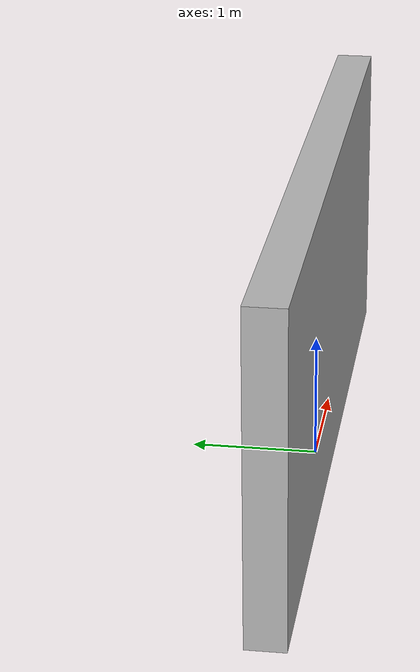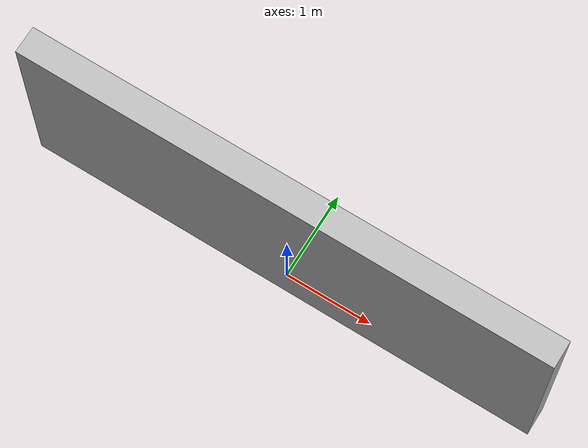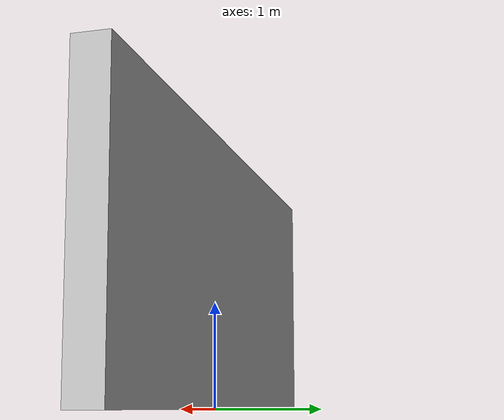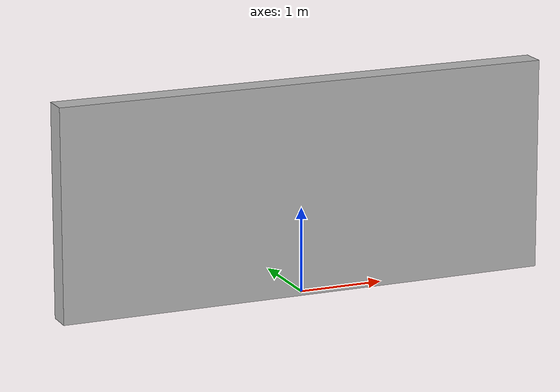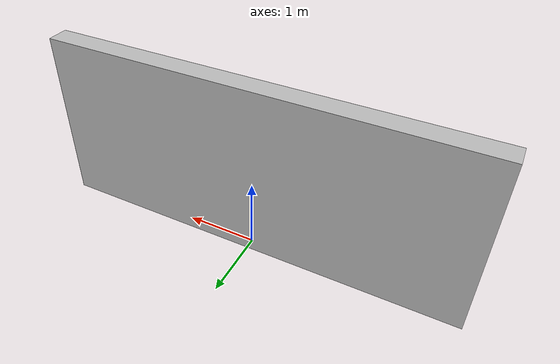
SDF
<?xml version="1.0" ?>
<sdf version="1.5">
  <model name="corridor_wall6">
    <static>true</static>
    <link name="link">
      <pose>0 0 1.25 0 0 0</pose>
      <collision name="collision">
        <geometry>
          <box>
            <size>5.9 0.3 2.5</size>
          </box>
        </geometry>
      </collision>
      <visual name="visual">
        <cast_shadows>false</cast_shadows>
        <geometry>
          <box>
            <size>5.9 0.3 2.5</size>
          </box>
        </geometry>
        <material>
          <script>
            <uri>model://corridor_wall6/materials/scripts</uri>
            <uri>model://corridor_wall6/materials/textures</uri>
            <name>vrc/corridor_wall6</name>
          </script>
        </material>
      </visual>
    </link>
  </model>
</sdf>
